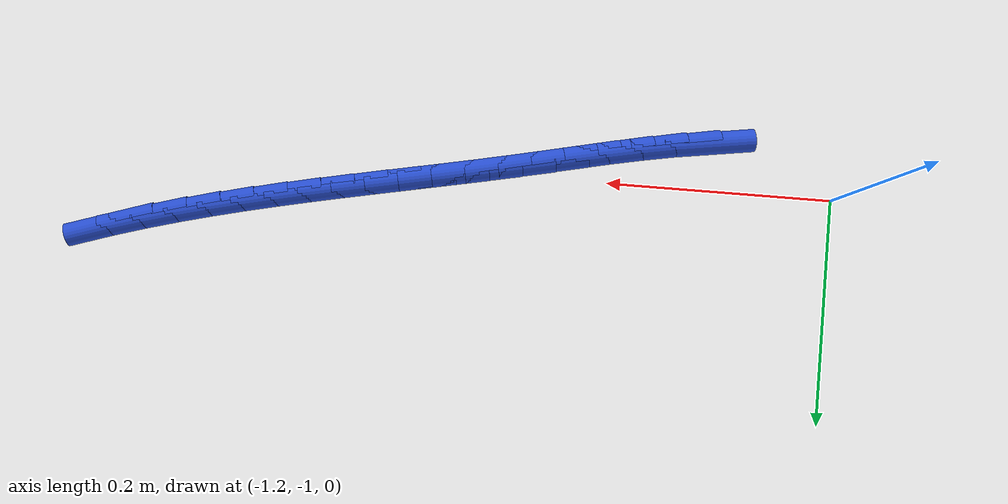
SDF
<sdf version="1.6">
 <world name="default">
  <model name="ground_plane">
   <static>1</static>
   <link name="link">
    <collision name="collision">
     <geometry><plane><normal>0 0 1</normal><size>100 100</size></plane></geometry>
     <surface><friction><ode><mu>100</mu><mu2>50</mu2></ode></friction></surface>
    </collision>
    <visual name="visual">
     <cast_shadows>0</cast_shadows>
     <geometry><plane><normal>0 0 1</normal><size>100 100</size></plane></geometry>
     <material>
      <script><uri>file://media/materials/scripts/gazebo.material</uri><name>Gazebo/WhiteGlow</name></script>
     </material>
    </visual>
   </link>
  </model>
  <model name="line">
   <link name="link_173">
    <pose>-1.085583109614886 -1.0409453319669033 0.01 0 1.57 0.1496947880490272</pose>
    <collision name="collision">
     <geometry><cylinder><radius>0.01</radius><length>0.08</length></cylinder></geometry>
    </collision>
    <visual name="visual">
     <material>
      <script><name>Gazebo/Blue</name><uri>file://media/materials/scripts/gazebo.material</uri></script>
     </material>
     <geometry><cylinder><radius>0.01</radius><length>0.08</length></cylinder></geometry>
    </visual>
   </link>
   <link name="link_174">
    <pose>-1.0564777757071664 -1.0365555767679624 0.01 0 1.57 0.17978960685714707</pose>
    <collision name="collision">
     <geometry><cylinder><radius>0.01</radius><length>0.08</length></cylinder></geometry>
    </collision>
    <visual name="visual">
     <material>
      <script><name>Gazebo/Blue</name><uri>file://media/materials/scripts/gazebo.material</uri></script>
     </material>
     <geometry><cylinder><radius>0.01</radius><length>0.08</length></cylinder></geometry>
    </visual>
   </link>
   <link name="link_175">
    <pose>-1.0275038381950292 -1.0312895005347773 0.01 0 1.57 0.20135694804436946</pose>
    <collision name="collision">
     <geometry><cylinder><radius>0.01</radius><length>0.08</length></cylinder></geometry>
    </collision>
    <visual name="visual">
     <material>
      <script><name>Gazebo/Blue</name><uri>file://media/materials/scripts/gazebo.material</uri></script>
     </material>
     <geometry><cylinder><radius>0.01</radius><length>0.08</length></cylinder></geometry>
    </visual>
   </link>
   <link name="link_176">
    <pose>-0.9986296829231502 -1.0253956175281238 0.01 0 1.57 0.21442543308408957</pose>
    <collision name="collision">
     <geometry><cylinder><radius>0.01</radius><length>0.08</length></cylinder></geometry>
    </collision>
    <visual name="visual">
     <material>
      <script><name>Gazebo/Blue</name><uri>file://media/materials/scripts/gazebo.material</uri></script>
     </material>
     <geometry><cylinder><radius>0.01</radius><length>0.08</length></cylinder></geometry>
    </visual>
   </link>
   <link name="link_177">
    <pose>-0.9698236957362038 -1.019122442008779 0.01 0 1.57 0.21902487427174433</pose>
    <collision name="collision">
     <geometry><cylinder><radius>0.01</radius><length>0.08</length></cylinder></geometry>
    </collision>
    <visual name="visual">
     <material>
      <script><name>Gazebo/Blue</name><uri>file://media/materials/scripts/gazebo.material</uri></script>
     </material>
     <geometry><cylinder><radius>0.01</radius><length>0.08</length></cylinder></geometry>
    </visual>
   </link>
   <link name="link_178">
    <pose>-0.941054262478865 -1.0127184882375193 0.01 0 1.57 0.21521487780357054</pose>
    <collision name="collision">
     <geometry><cylinder><radius>0.01</radius><length>0.08</length></cylinder></geometry>
    </collision>
    <visual name="visual">
     <material>
      <script><name>Gazebo/Blue</name><uri>file://media/materials/scripts/gazebo.material</uri></script>
     </material>
     <geometry><cylinder><radius>0.01</radius><length>0.08</length></cylinder></geometry>
    </visual>
   </link>
   <link name="link_179">
    <pose>-0.9122899563722596 -1.0064306008974069 0.01 0 1.57 0.20697976063188886</pose>
    <collision name="collision">
     <geometry><cylinder><radius>0.01</radius><length>0.08</length></cylinder></geometry>
    </collision>
    <visual name="visual">
     <material>
      <script><name>Gazebo/Blue</name><uri>file://media/materials/scripts/gazebo.material</uri></script>
     </material>
     <geometry><cylinder><radius>0.01</radius><length>0.08</length></cylinder></geometry>
    </visual>
   </link>
   <link name="link_180">
    <pose>-0.8835125823934582 -1.000387725946138 0.01 0 1.57 0.2009094279184522</pose>
    <collision name="collision">
     <geometry><cylinder><radius>0.01</radius><length>0.08</length></cylinder></geometry>
    </collision>
    <visual name="visual">
     <material>
      <script><name>Gazebo/Blue</name><uri>file://media/materials/scripts/gazebo.material</uri></script>
     </material>
     <geometry><cylinder><radius>0.01</radius><length>0.08</length></cylinder></geometry>
    </visual>
   </link>
   <link name="link_181">
    <pose>-0.8547256884895511 -0.9945250732671831 0.01 0 1.57 0.1976317293096055</pose>
    <collision name="collision">
     <geometry><cylinder><radius>0.01</radius><length>0.08</length></cylinder></geometry>
    </collision>
    <visual name="visual">
     <material>
      <script><name>Gazebo/Blue</name><uri>file://media/materials/scripts/gazebo.material</uri></script>
     </material>
     <geometry><cylinder><radius>0.01</radius><length>0.08</length></cylinder></geometry>
    </visual>
   </link>
   <link name="link_182">
    <pose>-0.8259348449905398 -0.9887598327345468 0.01 0 1.57 0.19715487191716624</pose>
    <collision name="collision">
     <geometry><cylinder><radius>0.01</radius><length>0.08</length></cylinder></geometry>
    </collision>
    <visual name="visual">
     <material>
      <script><name>Gazebo/Blue</name><uri>file://media/materials/scripts/gazebo.material</uri></script>
     </material>
     <geometry><cylinder><radius>0.01</radius><length>0.08</length></cylinder></geometry>
    </visual>
   </link>
   <link name="link_183">
    <pose>-0.7971456222264257 -0.9830091942222338 0.01 0 1.57 0.19948066645981882</pose>
    <collision name="collision">
     <geometry><cylinder><radius>0.01</radius><length>0.08</length></cylinder></geometry>
    </collision>
    <visual name="visual">
     <material>
      <script><name>Gazebo/Blue</name><uri>file://media/materials/scripts/gazebo.material</uri></script>
     </material>
     <geometry><cylinder><radius>0.01</radius><length>0.08</length></cylinder></geometry>
    </visual>
   </link>
   <link name="link_184">
    <pose>-0.7683635905272096 -0.977190347604248 0.01 0 1.57 0.20460462746403132</pose>
    <collision name="collision">
     <geometry><cylinder><radius>0.01</radius><length>0.08</length></cylinder></geometry>
    </collision>
    <visual name="visual">
     <material>
      <script><name>Gazebo/Blue</name><uri>file://media/materials/scripts/gazebo.material</uri></script>
     </material>
     <geometry><cylinder><radius>0.01</radius><length>0.08</length></cylinder></geometry>
    </visual>
   </link>
   <link name="link_185">
    <pose>-0.7395943202228947 -0.9712204827545947 0.01 0 1.57 0.21251545223750032</pose>
    <collision name="collision">
     <geometry><cylinder><radius>0.01</radius><length>0.08</length></cylinder></geometry>
    </collision>
    <visual name="visual">
     <material>
      <script><name>Gazebo/Blue</name><uri>file://media/materials/scripts/gazebo.material</uri></script>
     </material>
     <geometry><cylinder><radius>0.01</radius><length>0.08</length></cylinder></geometry>
    </visual>
   </link>
   <link name="link_186">
    <pose>-0.7108433816434818 -0.9650167895472782 0.01 0 1.57 0.22319389512754018</pose>
    <collision name="collision">
     <geometry><cylinder><radius>0.01</radius><length>0.08</length></cylinder></geometry>
    </collision>
    <visual name="visual">
     <material>
      <script><name>Gazebo/Blue</name><uri>file://media/materials/scripts/gazebo.material</uri></script>
     </material>
     <geometry><cylinder><radius>0.01</radius><length>0.08</length></cylinder></geometry>
    </visual>
   </link>
   <link name="link_187">
    <pose>-0.6821163451189721 -0.9584964578563029 0.01 0 1.57 0.2366110773961321</pose>
    <collision name="collision">
     <geometry><cylinder><radius>0.01</radius><length>0.08</length></cylinder></geometry>
    </collision>
    <visual name="visual">
     <material>
      <script><name>Gazebo/Blue</name><uri>file://media/materials/scripts/gazebo.material</uri></script>
     </material>
     <geometry><cylinder><radius>0.01</radius><length>0.08</length></cylinder></geometry>
    </visual>
   </link>
   <link name="link_188">
    <pose>-0.6534187809793665 -0.9515766775556731 0.01 0 1.57 0.2527263021092571</pose>
    <collision name="collision">
     <geometry><cylinder><radius>0.01</radius><length>0.08</length></cylinder></geometry>
    </collision>
    <visual name="visual">
     <material>
      <script><name>Gazebo/Blue</name><uri>file://media/materials/scripts/gazebo.material</uri></script>
     </material>
     <geometry><cylinder><radius>0.01</radius><length>0.08</length></cylinder></geometry>
    </visual>
   </link>
   <link name="link_189">
    <pose>-0.6247562595546681 -0.9441746385193939 0.01 0 1.57 0.27148447946459087</pose>
    <collision name="collision">
     <geometry><cylinder><radius>0.01</radius><length>0.08</length></cylinder></geometry>
    </collision>
    <visual name="visual">
     <material>
      <script><name>Gazebo/Blue</name><uri>file://media/materials/scripts/gazebo.material</uri></script>
     </material>
     <geometry><cylinder><radius>0.01</radius><length>0.08</length></cylinder></geometry>
    </visual>
   </link>
   <link name="link_190">
    <pose>-0.5961343511748775 -0.9362075306214696 0.01 0 1.57 0.293039219928162</pose>
    <collision name="collision">
     <geometry><cylinder><radius>0.01</radius><length>0.08</length></cylinder></geometry>
    </collision>
    <visual name="visual">
     <material>
      <script><name>Gazebo/Blue</name><uri>file://media/materials/scripts/gazebo.material</uri></script>
     </material>
     <geometry><cylinder><radius>0.01</radius><length>0.08</length></cylinder></geometry>
    </visual>
   </link>
   <link name="link_191">
    <pose>-0.5675727230188233 -0.927589754389687 0.01 0 1.57 0.3189129078657695</pose>
    <collision name="collision">
     <geometry><cylinder><radius>0.01</radius><length>0.08</length></cylinder></geometry>
    </collision>
    <visual name="visual">
     <material>
      <script><name>Gazebo/Blue</name><uri>file://media/materials/scripts/gazebo.material</uri></script>
     </material>
     <geometry><cylinder><radius>0.01</radius><length>0.08</length></cylinder></geometry>
    </visual>
   </link>
  </model>
 </world>
</sdf>
